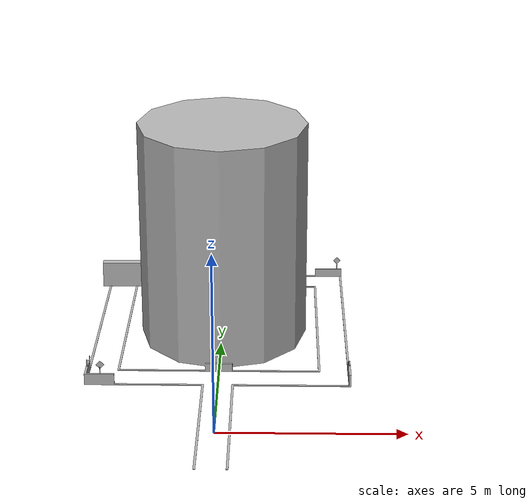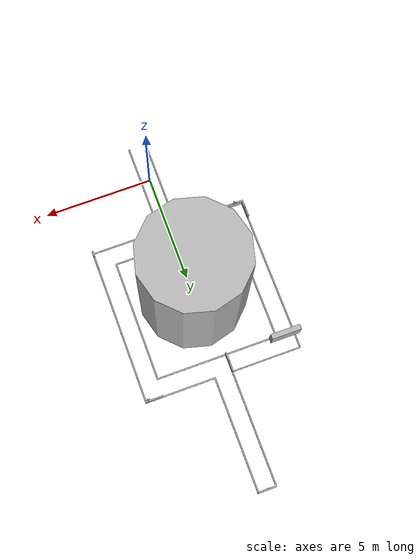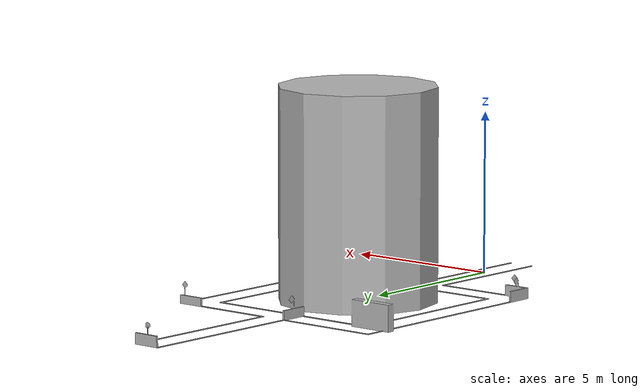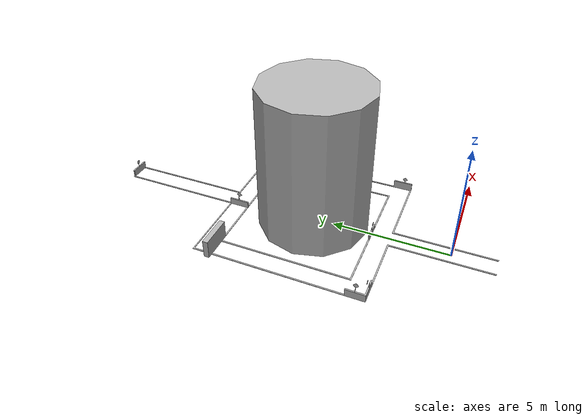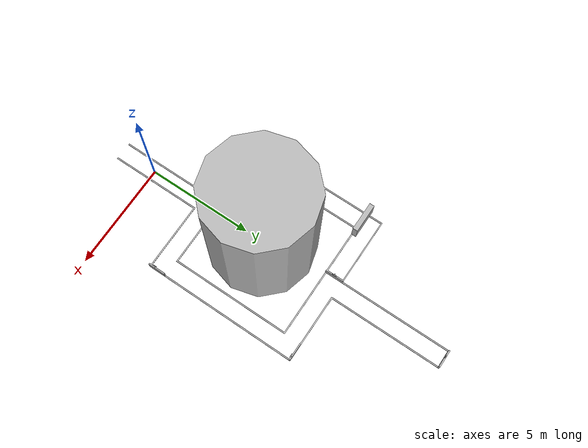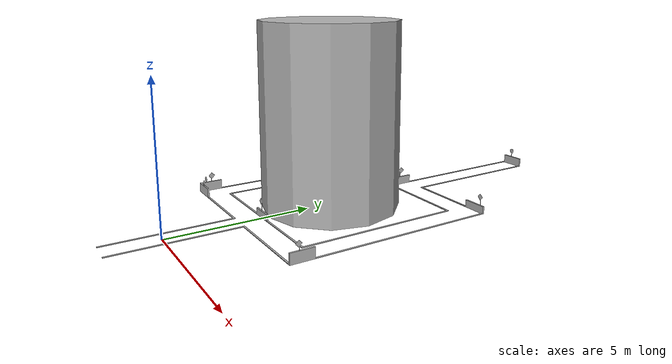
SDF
<?xml version="1.0" ?>
<sdf version="1.6">
  <model name="level1_latest">
    <static>true</static>
    <link name="link">
      <collision name="collision">
        <pose>0 0 0 0 0 0</pose>
        <geometry>
          <mesh>
            <uri>model://level1_latest/meshes/map.obj</uri>
          </mesh>
        </geometry>
      </collision>
      <visual name="visual">
        <pose>0 0 0 0 0 0</pose>
        <geometry>
          <mesh>
            <uri>model://level1_latest/meshes/map.obj</uri>
          </mesh>
        </geometry>
      </visual>
    </link>
  </model>
</sdf>
